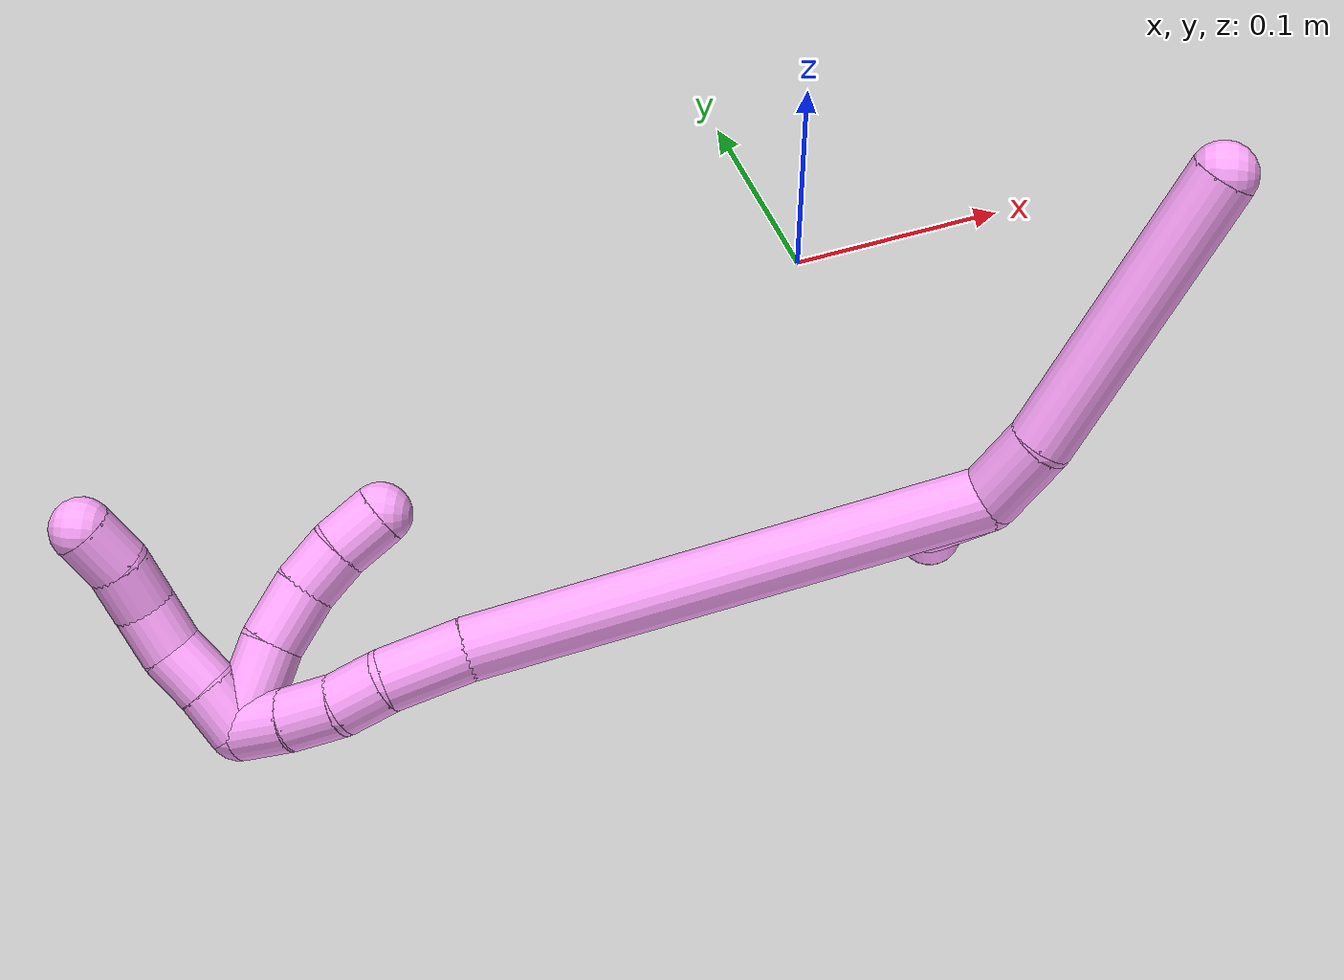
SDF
<sdf version="1.7">
 <world name="default">
  <model name="4">
   <static>0</static>
   <link name="4">
    <collision name="collision-cylinder-e_1_2_8">
     <pose>-0.010223 0.007678 0.008869 -0.713524 -0.716837 0.27744</pose>
     <geometry><cylinder><radius>0.0125</radius><length>0.031121</length></cylinder></geometry>
     <surface>
      <friction><ode><mu>1.16</mu><mu2>1.16</mu2><slip1>0</slip1><slip2>0</slip2></ode></friction>
      <contact><ode><kp>1e+06</kp><kd>1</kd><max_vel>0</max_vel><min_depth>0.001</min_depth></ode></contact>
     </surface>
    </collision>
    <visual name="visual-cylinder-e_1_2_8">
     <pose>-0.010223 0.007678 0.008869 -0.713524 -0.716837 0.27744</pose>
     <geometry><cylinder><radius>0.0125</radius><length>0.031121</length></cylinder></geometry>
     <material><ambient>1 0.65098 0.996078 1</ambient></material>
    </visual>
    <collision name="collision-cylinder-e_2_8_6">
     <pose>-0.05522 0.054336 0.046101 -0.941783 -0.62491 0.32599</pose>
     <geometry><cylinder><radius>0.0125</radius><length>0.118879</length></cylinder></geometry>
     <surface>
      <friction><ode><mu>1.16</mu><mu2>1.16</mu2><slip1>0</slip1><slip2>0</slip2></ode></friction>
      <contact><ode><kp>1e+06</kp><kd>1</kd><max_vel>0</max_vel><min_depth>0.001</min_depth></ode></contact>
     </surface>
    </collision>
    <visual name="visual-cylinder-e_2_8_6">
     <pose>-0.05522 0.054336 0.046101 -0.941783 -0.62491 0.32599</pose>
     <geometry><cylinder><radius>0.0125</radius><length>0.118879</length></cylinder></geometry>
     <material><ambient>1 0.65098 0.996078 1</ambient></material>
    </visual>
    <collision name="collision-cylinder-e_1_2_9">
     <pose>0.032647 0.00625 -0.011139 -2.63023 1.19788 -2.41012</pose>
     <geometry><cylinder><radius>0.0125</radius><length>0.070114</length></cylinder></geometry>
     <surface>
      <friction><ode><mu>1.16</mu><mu2>1.16</mu2><slip1>0</slip1><slip2>0</slip2></ode></friction>
      <contact><ode><kp>1e+06</kp><kd>1</kd><max_vel>0</max_vel><min_depth>0.001</min_depth></ode></contact>
     </surface>
    </collision>
    <visual name="visual-cylinder-e_1_2_9">
     <pose>0.032647 0.00625 -0.011139 -2.63023 1.19788 -2.41012</pose>
     <geometry><cylinder><radius>0.0125</radius><length>0.070114</length></cylinder></geometry>
     <material><ambient>1 0.65098 0.996078 1</ambient></material>
    </visual>
    <collision name="collision-cylinder-e_2_9_5">
     <pose>0.080042 0.014908 -0.022138 -1.51319 1.40871 -1.35212</pose>
     <geometry><cylinder><radius>0.0125</radius><length>0.029886</length></cylinder></geometry>
     <surface>
      <friction><ode><mu>1.16</mu><mu2>1.16</mu2><slip1>0</slip1><slip2>0</slip2></ode></friction>
      <contact><ode><kp>1e+06</kp><kd>1</kd><max_vel>0</max_vel><min_depth>0.001</min_depth></ode></contact>
     </surface>
    </collision>
    <visual name="visual-cylinder-e_2_9_5">
     <pose>0.080042 0.014908 -0.022138 -1.51319 1.40871 -1.35212</pose>
     <geometry><cylinder><radius>0.0125</radius><length>0.029886</length></cylinder></geometry>
     <material><ambient>1 0.65098 0.996078 1</ambient></material>
    </visual>
    <collision name="collision-cylinder-e_1_2_10">
     <pose>0.006709 -0.03475 -0.09484 2.79038 0.066321 0.369645</pose>
     <geometry><cylinder><radius>0.0125</radius><length>0.202457</length></cylinder></geometry>
     <surface>
      <friction><ode><mu>1.16</mu><mu2>1.16</mu2><slip1>0</slip1><slip2>0</slip2></ode></friction>
      <contact><ode><kp>1e+06</kp><kd>1</kd><max_vel>0</max_vel><min_depth>0.001</min_depth></ode></contact>
     </surface>
    </collision>
    <visual name="visual-cylinder-e_1_2_10">
     <pose>0.006709 -0.03475 -0.09484 2.79038 0.066321 0.369645</pose>
     <geometry><cylinder><radius>0.0125</radius><length>0.202457</length></cylinder></geometry>
     <material><ambient>1 0.65098 0.996078 1</ambient></material>
    </visual>
    <collision name="collision-cylinder-e_2_10_11">
     <pose>0.014103 -0.076726 -0.204649 2.69188 0.041235 0.179825</pose>
     <geometry><cylinder><radius>0.0125</radius><length>0.033273</length></cylinder></geometry>
     <surface>
      <friction><ode><mu>1.16</mu><mu2>1.16</mu2><slip1>0</slip1><slip2>0</slip2></ode></friction>
      <contact><ode><kp>1e+06</kp><kd>1</kd><max_vel>0</max_vel><min_depth>0.001</min_depth></ode></contact>
     </surface>
    </collision>
    <visual name="visual-cylinder-e_2_10_11">
     <pose>0.014103 -0.076726 -0.204649 2.69188 0.041235 0.179825</pose>
     <geometry><cylinder><radius>0.0125</radius><length>0.033273</length></cylinder></geometry>
     <material><ambient>1 0.65098 0.996078 1</ambient></material>
    </visual>
    <collision name="collision-cylinder-e_3_11_12">
     <pose>0.017638 -0.088456 -0.228193 2.65788 0.286087 1.05693</pose>
     <geometry><cylinder><radius>0.0125</radius><length>0.02019</length></cylinder></geometry>
     <surface>
      <friction><ode><mu>1.16</mu><mu2>1.16</mu2><slip1>0</slip1><slip2>0</slip2></ode></friction>
      <contact><ode><kp>1e+06</kp><kd>1</kd><max_vel>0</max_vel><min_depth>0.001</min_depth></ode></contact>
     </surface>
    </collision>
    <visual name="visual-cylinder-e_3_11_12">
     <pose>0.017638 -0.088456 -0.228193 2.65788 0.286087 1.05693</pose>
     <geometry><cylinder><radius>0.0125</radius><length>0.02019</length></cylinder></geometry>
     <material><ambient>1 0.65098 0.996078 1</ambient></material>
    </visual>
    <collision name="collision-cylinder-e_4_12_13">
     <pose>0.024045 -0.095693 -0.246879 2.87766 0.327484 1.78798</pose>
     <geometry><cylinder><radius>0.0125</radius><length>0.022124</length></cylinder></geometry>
     <surface>
      <friction><ode><mu>1.16</mu><mu2>1.16</mu2><slip1>0</slip1><slip2>0</slip2></ode></friction>
      <contact><ode><kp>1e+06</kp><kd>1</kd><max_vel>0</max_vel><min_depth>0.001</min_depth></ode></contact>
     </surface>
    </collision>
    <visual name="visual-cylinder-e_4_12_13">
     <pose>0.024045 -0.095693 -0.246879 2.87766 0.327484 1.78798</pose>
     <geometry><cylinder><radius>0.0125</radius><length>0.022124</length></cylinder></geometry>
     <material><ambient>1 0.65098 0.996078 1</ambient></material>
    </visual>
    <collision name="collision-cylinder-e_5_13_1">
     <pose>0.03111 -0.100066 -0.267262 2.98319 0.32514 2.24023</pose>
     <geometry><cylinder><radius>0.0125</radius><length>0.021955</length></cylinder></geometry>
     <surface>
      <friction><ode><mu>1.16</mu><mu2>1.16</mu2><slip1>0</slip1><slip2>0</slip2></ode></friction>
      <contact><ode><kp>1e+06</kp><kd>1</kd><max_vel>0</max_vel><min_depth>0.001</min_depth></ode></contact>
     </surface>
    </collision>
    <visual name="visual-cylinder-e_5_13_1">
     <pose>0.03111 -0.100066 -0.267262 2.98319 0.32514 2.24023</pose>
     <geometry><cylinder><radius>0.0125</radius><length>0.021955</length></cylinder></geometry>
     <material><ambient>1 0.65098 0.996078 1</ambient></material>
    </visual>
    <collision name="collision-cylinder-e_1_1_14">
     <pose>0.030729 -0.085503 -0.273014 -1.29871 -0.227129 0.172748</pose>
     <geometry><cylinder><radius>0.0125</radius><length>0.034532</length></cylinder></geometry>
     <surface>
      <friction><ode><mu>1.16</mu><mu2>1.16</mu2><slip1>0</slip1><slip2>0</slip2></ode></friction>
      <contact><ode><kp>1e+06</kp><kd>1</kd><max_vel>0</max_vel><min_depth>0.001</min_depth></ode></contact>
     </surface>
    </collision>
    <visual name="visual-cylinder-e_1_1_14">
     <pose>0.030729 -0.085503 -0.273014 -1.29871 -0.227129 0.172748</pose>
     <geometry><cylinder><radius>0.0125</radius><length>0.034532</length></cylinder></geometry>
     <material><ambient>1 0.65098 0.996078 1</ambient></material>
    </visual>
    <collision name="collision-cylinder-e_2_14_15">
     <pose>0.02441 -0.058501 -0.263053 -1.10413 -0.19841 0.12246</pose>
     <geometry><cylinder><radius>0.0125</radius><length>0.024666</length></cylinder></geometry>
     <surface>
      <friction><ode><mu>1.16</mu><mu2>1.16</mu2><slip1>0</slip1><slip2>0</slip2></ode></friction>
      <contact><ode><kp>1e+06</kp><kd>1</kd><max_vel>0</max_vel><min_depth>0.001</min_depth></ode></contact>
     </surface>
    </collision>
    <visual name="visual-cylinder-e_2_14_15">
     <pose>0.02441 -0.058501 -0.263053 -1.10413 -0.19841 0.12246</pose>
     <geometry><cylinder><radius>0.0125</radius><length>0.024666</length></cylinder></geometry>
     <material><ambient>1 0.65098 0.996078 1</ambient></material>
    </visual>
    <collision name="collision-cylinder-e_3_15_16">
     <pose>0.019452 -0.040123 -0.251588 -0.899163 -0.255289 0.123702</pose>
     <geometry><cylinder><radius>0.0125</radius><length>0.020014</length></cylinder></geometry>
     <surface>
      <friction><ode><mu>1.16</mu><mu2>1.16</mu2><slip1>0</slip1><slip2>0</slip2></ode></friction>
      <contact><ode><kp>1e+06</kp><kd>1</kd><max_vel>0</max_vel><min_depth>0.001</min_depth></ode></contact>
     </surface>
    </collision>
    <visual name="visual-cylinder-e_3_15_16">
     <pose>0.019452 -0.040123 -0.251588 -0.899163 -0.255289 0.123702</pose>
     <geometry><cylinder><radius>0.0125</radius><length>0.020014</length></cylinder></geometry>
     <material><ambient>1 0.65098 0.996078 1</ambient></material>
    </visual>
    <collision name="collision-cylinder-e_4_16_4">
     <pose>0.015124 -0.025525 -0.238111 -0.755417 -0.174163 0.069248</pose>
     <geometry><cylinder><radius>0.0125</radius><length>0.020788</length></cylinder></geometry>
     <surface>
      <friction><ode><mu>1.16</mu><mu2>1.16</mu2><slip1>0</slip1><slip2>0</slip2></ode></friction>
      <contact><ode><kp>1e+06</kp><kd>1</kd><max_vel>0</max_vel><min_depth>0.001</min_depth></ode></contact>
     </surface>
    </collision>
    <visual name="visual-cylinder-e_4_16_4">
     <pose>0.015124 -0.025525 -0.238111 -0.755417 -0.174163 0.069248</pose>
     <geometry><cylinder><radius>0.0125</radius><length>0.020788</length></cylinder></geometry>
     <material><ambient>1 0.65098 0.996078 1</ambient></material>
    </visual>
    <collision name="collision-cylinder-e_1_1_17">
     <pose>0.030349 -0.095334 -0.283951 -2.35957 -0.440947 0.995928</pose>
     <geometry><cylinder><radius>0.0125</radius><length>0.02</length></cylinder></geometry>
     <surface>
      <friction><ode><mu>1.16</mu><mu2>1.16</mu2><slip1>0</slip1><slip2>0</slip2></ode></friction>
      <contact><ode><kp>1e+06</kp><kd>1</kd><max_vel>0</max_vel><min_depth>0.001</min_depth></ode></contact>
     </surface>
    </collision>
    <visual name="visual-cylinder-e_1_1_17">
     <pose>0.030349 -0.095334 -0.283951 -2.35957 -0.440947 0.995928</pose>
     <geometry><cylinder><radius>0.0125</radius><length>0.02</length></cylinder></geometry>
     <material><ambient>1 0.65098 0.996078 1</ambient></material>
    </visual>
    <collision name="collision-cylinder-e_2_17_18">
     <pose>0.022501 -0.08311 -0.297644 -2.46446 -0.366082 0.967993</pose>
     <geometry><cylinder><radius>0.0125</radius><length>0.02</length></cylinder></geometry>
     <surface>
      <friction><ode><mu>1.16</mu><mu2>1.16</mu2><slip1>0</slip1><slip2>0</slip2></ode></friction>
      <contact><ode><kp>1e+06</kp><kd>1</kd><max_vel>0</max_vel><min_depth>0.001</min_depth></ode></contact>
     </surface>
    </collision>
    <visual name="visual-cylinder-e_2_17_18">
     <pose>0.022501 -0.08311 -0.297644 -2.46446 -0.366082 0.967993</pose>
     <geometry><cylinder><radius>0.0125</radius><length>0.02</length></cylinder></geometry>
     <material><ambient>1 0.65098 0.996078 1</ambient></material>
    </visual>
    <collision name="collision-cylinder-e_3_18_19">
     <pose>0.013385 -0.07071 -0.310064 -2.23642 -0.586717 1.11177</pose>
     <geometry><cylinder><radius>0.0125</radius><length>0.02</length></cylinder></geometry>
     <surface>
      <friction><ode><mu>1.16</mu><mu2>1.16</mu2><slip1>0</slip1><slip2>0</slip2></ode></friction>
      <contact><ode><kp>1e+06</kp><kd>1</kd><max_vel>0</max_vel><min_depth>0.001</min_depth></ode></contact>
     </surface>
    </collision>
    <visual name="visual-cylinder-e_3_18_19">
     <pose>0.013385 -0.07071 -0.310064 -2.23642 -0.586717 1.11177</pose>
     <geometry><cylinder><radius>0.0125</radius><length>0.02</length></cylinder></geometry>
     <material><ambient>1 0.65098 0.996078 1</ambient></material>
    </visual>
    <collision name="collision-cylinder-e_4_19_20">
     <pose>0.000561 -0.058675 -0.319305 -2.21247 -0.816584 1.42425</pose>
     <geometry><cylinder><radius>0.0125</radius><length>0.02</length></cylinder></geometry>
     <surface>
      <friction><ode><mu>1.16</mu><mu2>1.16</mu2><slip1>0</slip1><slip2>0</slip2></ode></friction>
      <contact><ode><kp>1e+06</kp><kd>1</kd><max_vel>0</max_vel><min_depth>0.001</min_depth></ode></contact>
     </surface>
    </collision>
    <visual name="visual-cylinder-e_4_19_20">
     <pose>0.000561 -0.058675 -0.319305 -2.21247 -0.816584 1.42425</pose>
     <geometry><cylinder><radius>0.0125</radius><length>0.02</length></cylinder></geometry>
     <material><ambient>1 0.65098 0.996078 1</ambient></material>
    </visual>
    <collision name="collision-cylinder-e_5_20_3">
     <pose>-0.013648 -0.048929 -0.32923 -2.51017 -0.764331 1.77674</pose>
     <geometry><cylinder><radius>0.0125</radius><length>0.02</length></cylinder></geometry>
     <surface>
      <friction><ode><mu>1.16</mu><mu2>1.16</mu2><slip1>0</slip1><slip2>0</slip2></ode></friction>
      <contact><ode><kp>1e+06</kp><kd>1</kd><max_vel>0</max_vel><min_depth>0.001</min_depth></ode></contact>
     </surface>
    </collision>
    <visual name="visual-cylinder-e_5_20_3">
     <pose>-0.013648 -0.048929 -0.32923 -2.51017 -0.764331 1.77674</pose>
     <geometry><cylinder><radius>0.0125</radius><length>0.02</length></cylinder></geometry>
     <material><ambient>1 0.65098 0.996078 1</ambient></material>
    </visual>
    <collision name="collision-sphere-3">
     <pose>-0.020568 -0.044668 -0.335057 0 -0 0</pose>
     <geometry><sphere><radius>0.0125</radius></sphere></geometry>
     <surface>
      <friction><ode><mu>1.16</mu><mu2>1.16</mu2><slip1>0</slip1><slip2>0</slip2></ode></friction>
      <contact><ode><kp>1e+06</kp><kd>1</kd><max_vel>0</max_vel><min_depth>0.001</min_depth></ode></contact>
     </surface>
    </collision>
    <visual name="visual-sphere-3">
     <pose>-0.020568 -0.044668 -0.335057 0 -0 0</pose>
     <geometry><sphere><radius>0.0125</radius></sphere></geometry>
     <material><ambient>1 0.65098 0.996078 1</ambient></material>
    </visual>
    <collision name="collision-sphere-20">
     <pose>-0.006727 -0.05319 -0.323404 0 -0 0</pose>
     <geometry><sphere><radius>0.0125</radius></sphere></geometry>
     <surface>
      <friction><ode><mu>1.16</mu><mu2>1.16</mu2><slip1>0</slip1><slip2>0</slip2></ode></friction>
      <contact><ode><kp>1e+06</kp><kd>1</kd><max_vel>0</max_vel><min_depth>0.001</min_depth></ode></contact>
     </surface>
    </collision>
    <visual name="visual-sphere-20">
     <pose>-0.006727 -0.05319 -0.323404 0 -0 0</pose>
     <geometry><sphere><radius>0.0125</radius></sphere></geometry>
     <material><ambient>1 0.65098 0.996078 1</ambient></material>
    </visual>
    <collision name="collision-sphere-19">
     <pose>0.007849 -0.06416 -0.315207 0 -0 0</pose>
     <geometry><sphere><radius>0.0125</radius></sphere></geometry>
     <surface>
      <friction><ode><mu>1.16</mu><mu2>1.16</mu2><slip1>0</slip1><slip2>0</slip2></ode></friction>
      <contact><ode><kp>1e+06</kp><kd>1</kd><max_vel>0</max_vel><min_depth>0.001</min_depth></ode></contact>
     </surface>
    </collision>
    <visual name="visual-sphere-19">
     <pose>0.007849 -0.06416 -0.315207 0 -0 0</pose>
     <geometry><sphere><radius>0.0125</radius></sphere></geometry>
     <material><ambient>1 0.65098 0.996078 1</ambient></material>
    </visual>
    <collision name="collision-sphere-10">
     <pose>0.013417 -0.0695 -0.18968 0 -0 0</pose>
     <geometry><sphere><radius>0.0125</radius></sphere></geometry>
     <surface>
      <friction><ode><mu>1.16</mu><mu2>1.16</mu2><slip1>0</slip1><slip2>0</slip2></ode></friction>
      <contact><ode><kp>1e+06</kp><kd>1</kd><max_vel>0</max_vel><min_depth>0.001</min_depth></ode></contact>
     </surface>
    </collision>
    <visual name="visual-sphere-10">
     <pose>0.013417 -0.0695 -0.18968 0 -0 0</pose>
     <geometry><sphere><radius>0.0125</radius></sphere></geometry>
     <material><ambient>1 0.65098 0.996078 1</ambient></material>
    </visual>
    <collision name="collision-sphere-5">
     <pose>0.094789 0.017316 -0.022 0 -0 0</pose>
     <geometry><sphere><radius>0.0125</radius></sphere></geometry>
     <surface>
      <friction><ode><mu>1.16</mu><mu2>1.16</mu2><slip1>0</slip1><slip2>0</slip2></ode></friction>
      <contact><ode><kp>1e+06</kp><kd>1</kd><max_vel>0</max_vel><min_depth>0.001</min_depth></ode></contact>
     </surface>
    </collision>
    <visual name="visual-sphere-5">
     <pose>0.094789 0.017316 -0.022 0 -0 0</pose>
     <geometry><sphere><radius>0.0125</radius></sphere></geometry>
     <material><ambient>1 0.65098 0.996078 1</ambient></material>
    </visual>
    <collision name="collision-sphere-6">
     <pose>-0.089994 0.093316 0.074463 0 -0 0</pose>
     <geometry><sphere><radius>0.0125</radius></sphere></geometry>
     <surface>
      <friction><ode><mu>1.16</mu><mu2>1.16</mu2><slip1>0</slip1><slip2>0</slip2></ode></friction>
      <contact><ode><kp>1e+06</kp><kd>1</kd><max_vel>0</max_vel><min_depth>0.001</min_depth></ode></contact>
     </surface>
    </collision>
    <visual name="visual-sphere-6">
     <pose>-0.089994 0.093316 0.074463 0 -0 0</pose>
     <geometry><sphere><radius>0.0125</radius></sphere></geometry>
     <material><ambient>1 0.65098 0.996078 1</ambient></material>
    </visual>
    <collision name="collision-sphere-9">
     <pose>0.065295 0.012501 -0.022277 0 -0 0</pose>
     <geometry><sphere><radius>0.0125</radius></sphere></geometry>
     <surface>
      <friction><ode><mu>1.16</mu><mu2>1.16</mu2><slip1>0</slip1><slip2>0</slip2></ode></friction>
      <contact><ode><kp>1e+06</kp><kd>1</kd><max_vel>0</max_vel><min_depth>0.001</min_depth></ode></contact>
     </surface>
    </collision>
    <visual name="visual-sphere-9">
     <pose>0.065295 0.012501 -0.022277 0 -0 0</pose>
     <geometry><sphere><radius>0.0125</radius></sphere></geometry>
     <material><ambient>1 0.65098 0.996078 1</ambient></material>
    </visual>
    <collision name="collision-sphere-2">
     <geometry><sphere><radius>0.0125</radius></sphere></geometry>
     <surface>
      <friction><ode><mu>1.16</mu><mu2>1.16</mu2><slip1>0</slip1><slip2>0</slip2></ode></friction>
      <contact><ode><kp>1e+06</kp><kd>1</kd><max_vel>0</max_vel><min_depth>0.001</min_depth></ode></contact>
     </surface>
    </collision>
    <visual name="visual-sphere-2">
     <geometry><sphere><radius>0.0125</radius></sphere></geometry>
     <material><ambient>1 0.65098 0.996078 1</ambient></material>
    </visual>
    <collision name="collision-sphere-8">
     <pose>-0.020447 0.015356 0.017739 0 -0 0</pose>
     <geometry><sphere><radius>0.0125</radius></sphere></geometry>
     <surface>
      <friction><ode><mu>1.16</mu><mu2>1.16</mu2><slip1>0</slip1><slip2>0</slip2></ode></friction>
      <contact><ode><kp>1e+06</kp><kd>1</kd><max_vel>0</max_vel><min_depth>0.001</min_depth></ode></contact>
     </surface>
    </collision>
    <visual name="visual-sphere-8">
     <pose>-0.020447 0.015356 0.017739 0 -0 0</pose>
     <geometry><sphere><radius>0.0125</radius></sphere></geometry>
     <material><ambient>1 0.65098 0.996078 1</ambient></material>
    </visual>
    <collision name="collision-sphere-11">
     <pose>0.014789 -0.083952 -0.219619 0 -0 0</pose>
     <geometry><sphere><radius>0.0125</radius></sphere></geometry>
     <surface>
      <friction><ode><mu>1.16</mu><mu2>1.16</mu2><slip1>0</slip1><slip2>0</slip2></ode></friction>
      <contact><ode><kp>1e+06</kp><kd>1</kd><max_vel>0</max_vel><min_depth>0.001</min_depth></ode></contact>
     </surface>
    </collision>
    <visual name="visual-sphere-11">
     <pose>0.014789 -0.083952 -0.219619 0 -0 0</pose>
     <geometry><sphere><radius>0.0125</radius></sphere></geometry>
     <material><ambient>1 0.65098 0.996078 1</ambient></material>
    </visual>
    <collision name="collision-sphere-12">
     <pose>0.020487 -0.09296 -0.236767 0 -0 0</pose>
     <geometry><sphere><radius>0.0125</radius></sphere></geometry>
     <surface>
      <friction><ode><mu>1.16</mu><mu2>1.16</mu2><slip1>0</slip1><slip2>0</slip2></ode></friction>
      <contact><ode><kp>1e+06</kp><kd>1</kd><max_vel>0</max_vel><min_depth>0.001</min_depth></ode></contact>
     </surface>
    </collision>
    <visual name="visual-sphere-12">
     <pose>0.020487 -0.09296 -0.236767 0 -0 0</pose>
     <geometry><sphere><radius>0.0125</radius></sphere></geometry>
     <material><ambient>1 0.65098 0.996078 1</ambient></material>
    </visual>
    <collision name="collision-sphere-13">
     <pose>0.027603 -0.098425 -0.25699 0 -0 0</pose>
     <geometry><sphere><radius>0.0125</radius></sphere></geometry>
     <surface>
      <friction><ode><mu>1.16</mu><mu2>1.16</mu2><slip1>0</slip1><slip2>0</slip2></ode></friction>
      <contact><ode><kp>1e+06</kp><kd>1</kd><max_vel>0</max_vel><min_depth>0.001</min_depth></ode></contact>
     </surface>
    </collision>
    <visual name="visual-sphere-13">
     <pose>0.027603 -0.098425 -0.25699 0 -0 0</pose>
     <geometry><sphere><radius>0.0125</radius></sphere></geometry>
     <material><ambient>1 0.65098 0.996078 1</ambient></material>
    </visual>
    <collision name="collision-sphere-1">
     <pose>0.034617 -0.101707 -0.277535 0 -0 0</pose>
     <geometry><sphere><radius>0.0125</radius></sphere></geometry>
     <surface>
      <friction><ode><mu>1.16</mu><mu2>1.16</mu2><slip1>0</slip1><slip2>0</slip2></ode></friction>
      <contact><ode><kp>1e+06</kp><kd>1</kd><max_vel>0</max_vel><min_depth>0.001</min_depth></ode></contact>
     </surface>
    </collision>
    <visual name="visual-sphere-1">
     <pose>0.034617 -0.101707 -0.277535 0 -0 0</pose>
     <geometry><sphere><radius>0.0125</radius></sphere></geometry>
     <material><ambient>1 0.65098 0.996078 1</ambient></material>
    </visual>
    <collision name="collision-sphere-18">
     <pose>0.018922 -0.07726 -0.304922 0 -0 0</pose>
     <geometry><sphere><radius>0.0125</radius></sphere></geometry>
     <surface>
      <friction><ode><mu>1.16</mu><mu2>1.16</mu2><slip1>0</slip1><slip2>0</slip2></ode></friction>
      <contact><ode><kp>1e+06</kp><kd>1</kd><max_vel>0</max_vel><min_depth>0.001</min_depth></ode></contact>
     </surface>
    </collision>
    <visual name="visual-sphere-18">
     <pose>0.018922 -0.07726 -0.304922 0 -0 0</pose>
     <geometry><sphere><radius>0.0125</radius></sphere></geometry>
     <material><ambient>1 0.65098 0.996078 1</ambient></material>
    </visual>
    <collision name="collision-sphere-14">
     <pose>0.026841 -0.069299 -0.268493 0 -0 0</pose>
     <geometry><sphere><radius>0.0125</radius></sphere></geometry>
     <surface>
      <friction><ode><mu>1.16</mu><mu2>1.16</mu2><slip1>0</slip1><slip2>0</slip2></ode></friction>
      <contact><ode><kp>1e+06</kp><kd>1</kd><max_vel>0</max_vel><min_depth>0.001</min_depth></ode></contact>
     </surface>
    </collision>
    <visual name="visual-sphere-14">
     <pose>0.026841 -0.069299 -0.268493 0 -0 0</pose>
     <geometry><sphere><radius>0.0125</radius></sphere></geometry>
     <material><ambient>1 0.65098 0.996078 1</ambient></material>
    </visual>
    <collision name="collision-sphere-15">
     <pose>0.021979 -0.047703 -0.257613 0 -0 0</pose>
     <geometry><sphere><radius>0.0125</radius></sphere></geometry>
     <surface>
      <friction><ode><mu>1.16</mu><mu2>1.16</mu2><slip1>0</slip1><slip2>0</slip2></ode></friction>
      <contact><ode><kp>1e+06</kp><kd>1</kd><max_vel>0</max_vel><min_depth>0.001</min_depth></ode></contact>
     </surface>
    </collision>
    <visual name="visual-sphere-15">
     <pose>0.021979 -0.047703 -0.257613 0 -0 0</pose>
     <geometry><sphere><radius>0.0125</radius></sphere></geometry>
     <material><ambient>1 0.65098 0.996078 1</ambient></material>
    </visual>
    <collision name="collision-sphere-16">
     <pose>0.016925 -0.032544 -0.245563 0 -0 0</pose>
     <geometry><sphere><radius>0.0125</radius></sphere></geometry>
     <surface>
      <friction><ode><mu>1.16</mu><mu2>1.16</mu2><slip1>0</slip1><slip2>0</slip2></ode></friction>
      <contact><ode><kp>1e+06</kp><kd>1</kd><max_vel>0</max_vel><min_depth>0.001</min_depth></ode></contact>
     </surface>
    </collision>
    <visual name="visual-sphere-16">
     <pose>0.016925 -0.032544 -0.245563 0 -0 0</pose>
     <geometry><sphere><radius>0.0125</radius></sphere></geometry>
     <material><ambient>1 0.65098 0.996078 1</ambient></material>
    </visual>
    <collision name="collision-sphere-4">
     <pose>0.013323 -0.018507 -0.230658 0 -0 0</pose>
     <geometry><sphere><radius>0.0125</radius></sphere></geometry>
     <surface>
      <friction><ode><mu>1.16</mu><mu2>1.16</mu2><slip1>0</slip1><slip2>0</slip2></ode></friction>
      <contact><ode><kp>1e+06</kp><kd>1</kd><max_vel>0</max_vel><min_depth>0.001</min_depth></ode></contact>
     </surface>
    </collision>
    <visual name="visual-sphere-4">
     <pose>0.013323 -0.018507 -0.230658 0 -0 0</pose>
     <geometry><sphere><radius>0.0125</radius></sphere></geometry>
     <material><ambient>1 0.65098 0.996078 1</ambient></material>
    </visual>
    <collision name="collision-sphere-17">
     <pose>0.026081 -0.088961 -0.290367 0 -0 0</pose>
     <geometry><sphere><radius>0.0125</radius></sphere></geometry>
     <surface>
      <friction><ode><mu>1.16</mu><mu2>1.16</mu2><slip1>0</slip1><slip2>0</slip2></ode></friction>
      <contact><ode><kp>1e+06</kp><kd>1</kd><max_vel>0</max_vel><min_depth>0.001</min_depth></ode></contact>
     </surface>
    </collision>
    <visual name="visual-sphere-17">
     <pose>0.026081 -0.088961 -0.290367 0 -0 0</pose>
     <geometry><sphere><radius>0.0125</radius></sphere></geometry>
     <material><ambient>1 0.65098 0.996078 1</ambient></material>
    </visual>
    <inertial>
     <pose>0.006169 -0.027961 -0.125785 0 -0 0</pose>
     <mass>0.75</mass>
     <inertia>
      <ixx>0.001062</ixx>
      <ixy>0</ixy>
      <ixz>0</ixz>
      <iyy>-0.000159</iyy>
      <iyz>0</iyz>
      <izz>0.000122</izz>
     </inertia>
    </inertial>
   </link>
   <pose>-0.027704 -0.239819 0.096415 1.45654 1.16934 0.978768</pose>
  </model>
 </world>
</sdf>
